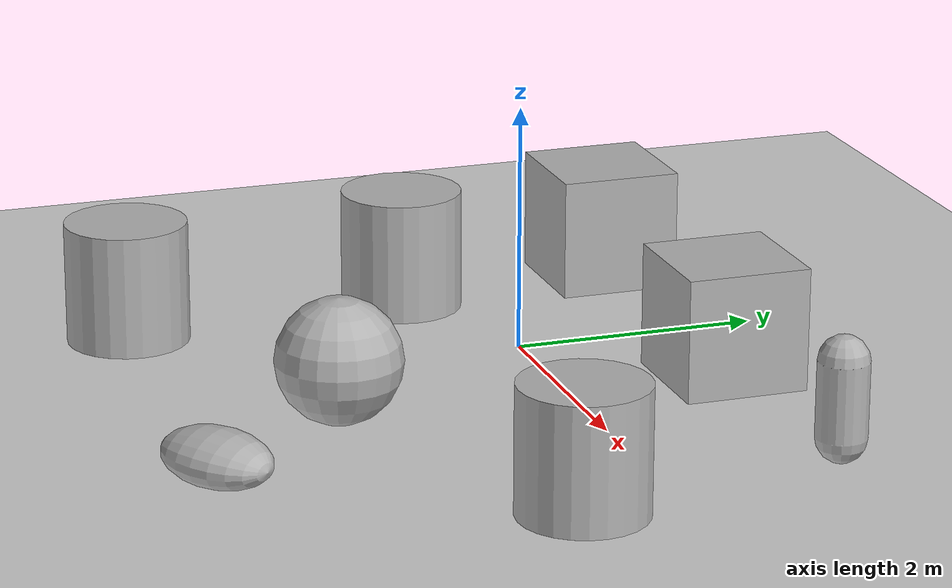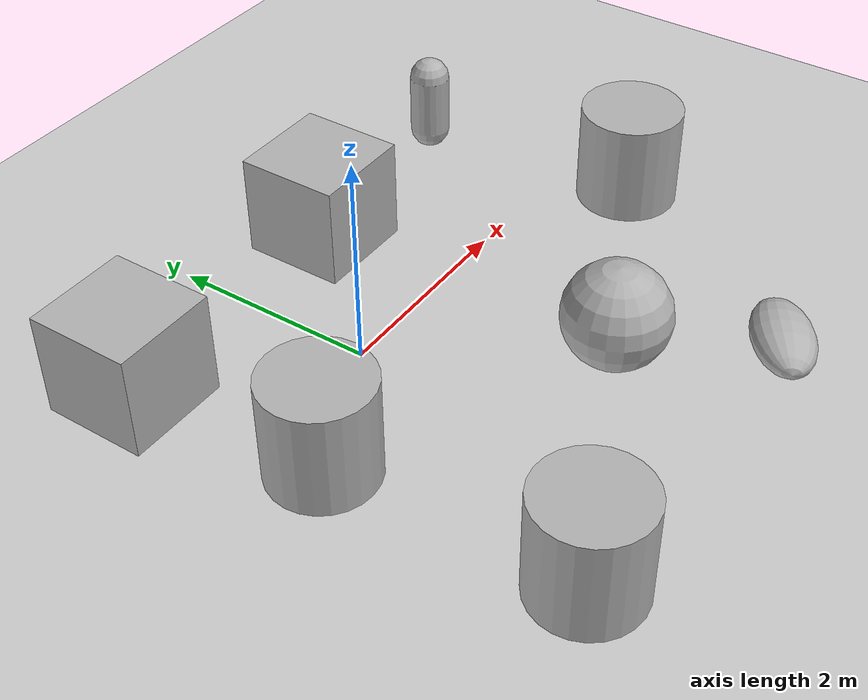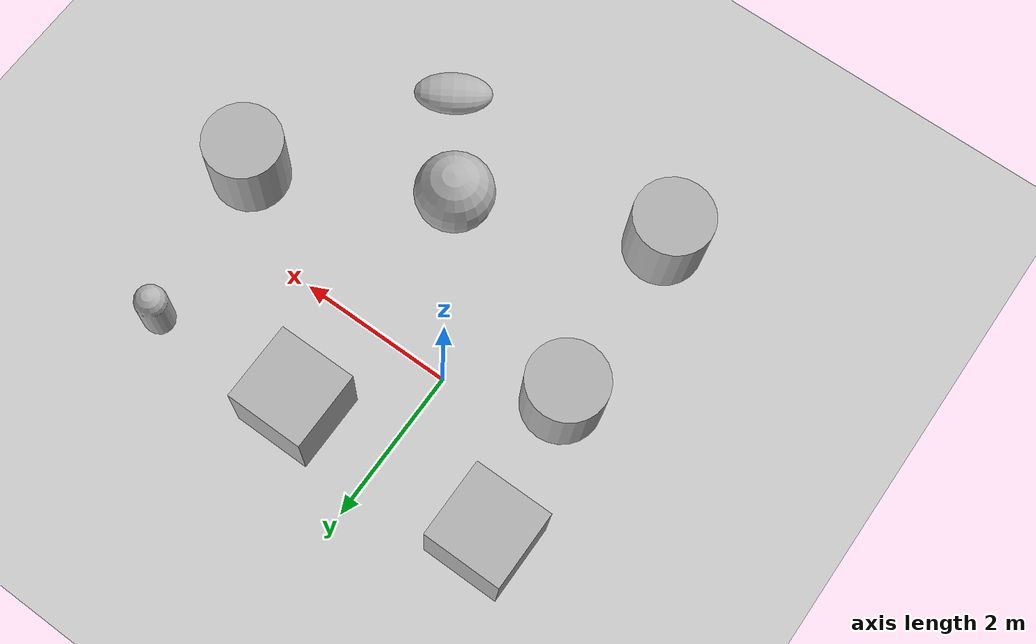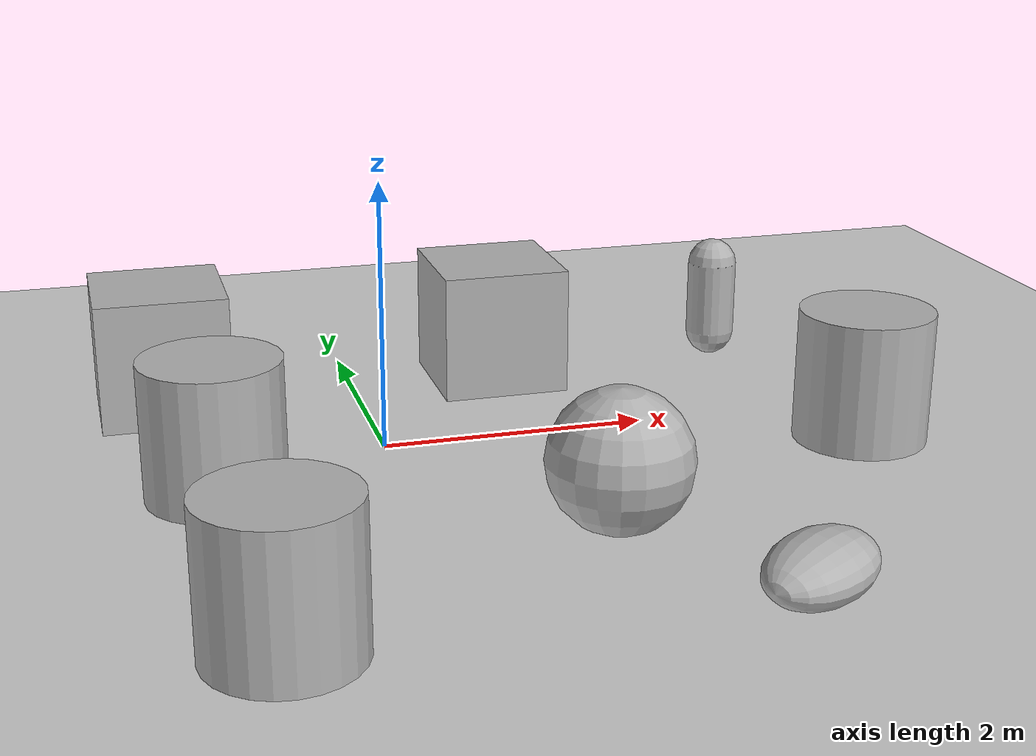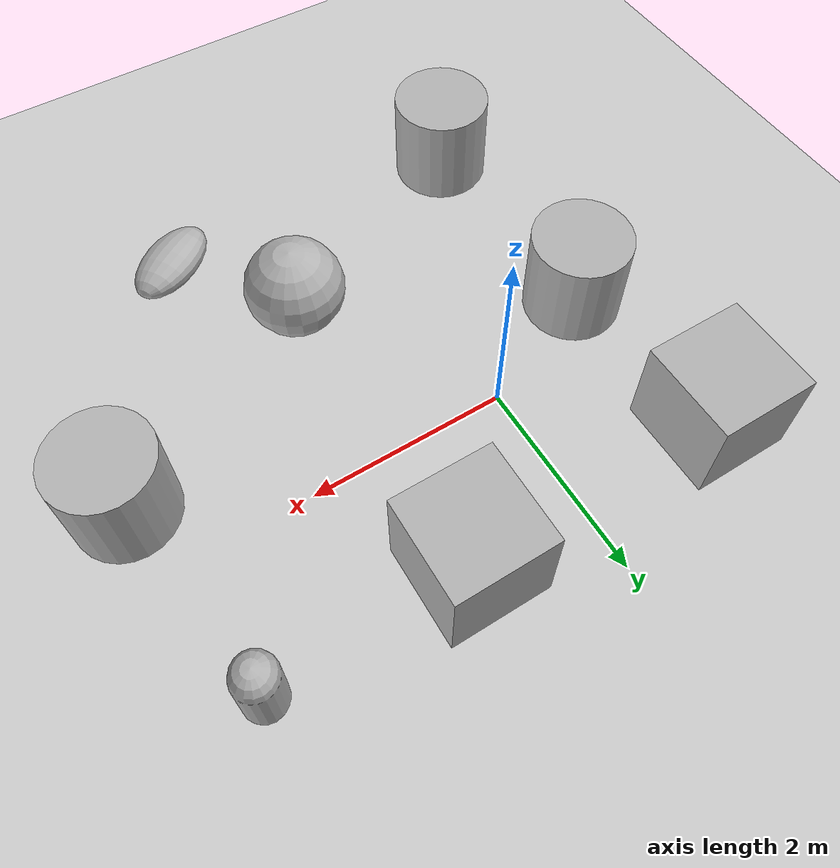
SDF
<sdf version='1.10'>
  <world name='empty'>
    <physics name='1ms' type='ignored'>
      <max_step_size>0.001</max_step_size>
      <real_time_factor>1</real_time_factor>
      <real_time_update_rate>1000</real_time_update_rate>
    </physics>
    <plugin name='gz::sim::systems::Physics' filename='gz-sim-physics-system' />
    <plugin name='gz::sim::systems::UserCommands' filename='gz-sim-user-commands-system' />
    <plugin name='gz::sim::systems::SceneBroadcaster' filename='gz-sim-scene-broadcaster-system' />
    <plugin name='gz::sim::systems::Contact' filename='gz-sim-contact-system' />
    <gravity>0 0 -9.8000000000000007</gravity>
    <magnetic_field>5.5644999999999998e-06 2.2875799999999999e-05 -4.2388400000000002e-05</magnetic_field>
    <atmosphere type='adiabatic' />
    <scene>
      <ambient>0.400000006 0.400000006 0.400000006 1</ambient>
      <background>0.699999988 0.699999988 0.699999988 1</background>
      <shadows>true</shadows>
    </scene>
    <model name='ground_plane'>
      <static>true</static>
      <link name='link'>
        <collision name='collision'>
          <geometry>
            <plane>
              <normal>0 0 1</normal>
              <size>100 100</size>
            </plane>
          </geometry>
          <surface>
            <friction>
              <ode />
            </friction>
            <bounce />
            <contact />
          </surface>
        </collision>
        <visual name='visual'>
          <geometry>
            <plane>
              <normal>0 0 1</normal>
              <size>100 100</size>
            </plane>
          </geometry>
          <material>
            <ambient>0.800000012 0.800000012 0.800000012 1</ambient>
            <diffuse>0.800000012 0.800000012 0.800000012 1</diffuse>
            <specular>0.800000012 0.800000012 0.800000012 1</specular>
          </material>
        </visual>
        <pose>0 0 0 0 0 0</pose>
        <inertial>
          <pose>0 0 0 0 0 0</pose>
          <mass>1</mass>
          <inertia>
            <ixx>1</ixx>
            <ixy>0</ixy>
            <ixz>0</ixz>
            <iyy>1</iyy>
            <iyz>0</iyz>
            <izz>1</izz>
          </inertia>
        </inertial>
        <enable_wind>false</enable_wind>
      </link>
      <pose>0 0 0 0 0 0</pose>
      <self_collide>false</self_collide>
    </model>
    <model name='box'>
      <pose>1.1660916055472477 1.2993458210183038 0.49999999980497606 1.0048033485058014e-21 -2.4640853465547739e-21 -3.9210766489770922e-22</pose>
      <link name='box_link'>
        <inertial>
          <inertia>
            <ixx>0.16666</ixx>
            <ixy>0</ixy>
            <ixz>0</ixz>
            <iyy>0.16666</iyy>
            <iyz>0</iyz>
            <izz>0.16666</izz>
          </inertia>
          <mass>1</mass>
          <pose>0 0 0 0 0 0</pose>
        </inertial>
        <collision name='box_collision'>
          <geometry>
            <box>
              <size>1 1 1</size>
            </box>
          </geometry>
          <surface>
            <friction>
              <ode />
            </friction>
            <bounce />
            <contact />
          </surface>
        </collision>
        <visual name='box_visual'>
          <geometry>
            <box>
              <size>1 1 1</size>
            </box>
          </geometry>
          <material>
            <ambient>0.300000012 0.300000012 0.300000012 1</ambient>
            <diffuse>0.699999988 0.699999988 0.699999988 1</diffuse>
            <specular>1 1 1 1</specular>
          </material>
        </visual>
        <pose>0 0 0 0 0 0</pose>
        <enable_wind>false</enable_wind>
      </link>
      <static>false</static>
      <self_collide>false</self_collide>
    </model>
    <model name='cylinder'>
      <pose>3.4846659461989145 -0.74300504323439609 0.49999943207967634 2.1669526001329398e-19 2.4963226576981788e-20 -1.1756414809361692e-20</pose>
      <link name='cylinder_link'>
        <inertial>
          <inertia>
            <ixx>0.14580000000000001</ixx>
            <ixy>0</ixy>
            <ixz>0</ixz>
            <iyy>0.14580000000000001</iyy>
            <iyz>0</iyz>
            <izz>0.125</izz>
          </inertia>
          <mass>1</mass>
          <pose>0 0 0 0 0 0</pose>
        </inertial>
        <collision name='cylinder_collision'>
          <geometry>
            <cylinder>
              <radius>0.5</radius>
              <length>1</length>
            </cylinder>
          </geometry>
          <surface>
            <friction>
              <ode />
            </friction>
            <bounce />
            <contact />
          </surface>
        </collision>
        <visual name='cylinder_visual'>
          <geometry>
            <cylinder>
              <radius>0.5</radius>
              <length>1</length>
            </cylinder>
          </geometry>
          <material>
            <ambient>0.300000012 0.300000012 0.300000012 1</ambient>
            <diffuse>0.699999988 0.699999988 0.699999988 1</diffuse>
            <specular>1 1 1 1</specular>
          </material>
        </visual>
        <pose>0 0 0 0 0 0</pose>
        <enable_wind>false</enable_wind>
      </link>
      <static>false</static>
      <self_collide>false</self_collide>
    </model>
    <model name='sphere'>
      <pose>1.1850777901563996 -1.8677535488881269 0.49999999980498194 0 0 0</pose>
      <link name='sphere_link'>
        <inertial>
          <inertia>
            <ixx>0.10000000000000001</ixx>
            <ixy>0</ixy>
            <ixz>0</ixz>
            <iyy>0.10000000000000001</iyy>
            <iyz>0</iyz>
            <izz>0.10000000000000001</izz>
          </inertia>
          <mass>1</mass>
          <pose>0 0 0 0 0 0</pose>
        </inertial>
        <collision name='sphere_collision'>
          <geometry>
            <sphere>
              <radius>0.5</radius>
            </sphere>
          </geometry>
          <surface>
            <friction>
              <ode />
            </friction>
            <bounce />
            <contact />
          </surface>
        </collision>
        <visual name='sphere_visual'>
          <geometry>
            <sphere>
              <radius>0.5</radius>
            </sphere>
          </geometry>
          <material>
            <ambient>0.300000012 0.300000012 0.300000012 1</ambient>
            <diffuse>0.699999988 0.699999988 0.699999988 1</diffuse>
            <specular>1 1 1 1</specular>
          </material>
        </visual>
        <pose>0 0 0 0 0 0</pose>
        <enable_wind>false</enable_wind>
      </link>
      <static>false</static>
      <self_collide>false</self_collide>
    </model>
    <model name='box_0'>
      <pose>-1.5123993113797958 1.263689167465879 0.49999999980497606 3.2031303070177259e-21 2.6997416254049152e-21 1.1998235187450823e-23</pose>
      <link name='box_link'>
        <inertial>
          <inertia>
            <ixx>0.16666</ixx>
            <ixy>0</ixy>
            <ixz>0</ixz>
            <iyy>0.16666</iyy>
            <iyz>0</iyz>
            <izz>0.16666</izz>
          </inertia>
          <mass>1</mass>
          <pose>0 0 0 0 0 0</pose>
        </inertial>
        <collision name='box_collision'>
          <geometry>
            <box>
              <size>1 1 1</size>
            </box>
          </geometry>
          <surface>
            <friction>
              <ode />
            </friction>
            <bounce />
            <contact />
          </surface>
        </collision>
        <visual name='box_visual'>
          <geometry>
            <box>
              <size>1 1 1</size>
            </box>
          </geometry>
          <material>
            <ambient>0.300000012 0.300000012 0.300000012 1</ambient>
            <diffuse>0.699999988 0.699999988 0.699999988 1</diffuse>
            <specular>1 1 1 1</specular>
          </material>
        </visual>
        <pose>0 0 0 0 0 0</pose>
        <enable_wind>false</enable_wind>
      </link>
      <static>false</static>
      <self_collide>false</self_collide>
    </model>
    <model name='cylinder_0'>
      <pose>-1.2993815523682415 -0.58479727158858252 0.49999943207967634 1.9148229637455751e-19 4.5585410549193875e-19 1.7387353861095508e-20</pose>
      <link name='cylinder_link'>
        <inertial>
          <inertia>
            <ixx>0.14580000000000001</ixx>
            <ixy>0</ixy>
            <ixz>0</ixz>
            <iyy>0.14580000000000001</iyy>
            <iyz>0</iyz>
            <izz>0.125</izz>
          </inertia>
          <mass>1</mass>
          <pose>0 0 0 0 0 0</pose>
        </inertial>
        <collision name='cylinder_collision'>
          <geometry>
            <cylinder>
              <radius>0.5</radius>
              <length>1</length>
            </cylinder>
          </geometry>
          <surface>
            <friction>
              <ode />
            </friction>
            <bounce />
            <contact />
          </surface>
        </collision>
        <visual name='cylinder_visual'>
          <geometry>
            <cylinder>
              <radius>0.5</radius>
              <length>1</length>
            </cylinder>
          </geometry>
          <material>
            <ambient>0.300000012 0.300000012 0.300000012 1</ambient>
            <diffuse>0.699999988 0.699999988 0.699999988 1</diffuse>
            <specular>1 1 1 1</specular>
          </material>
        </visual>
        <pose>0 0 0 0 0 0</pose>
        <enable_wind>false</enable_wind>
      </link>
      <static>false</static>
      <self_collide>false</self_collide>
    </model>
    <model name='capsule'>
      <pose>3.142121667050394 1.4170953701385194 0.49999999980498194 0 0 0</pose>
      <link name='capsule_link'>
        <inertial>
          <inertia>
            <ixx>0.074153999999999998</ixx>
            <ixy>0</ixy>
            <ixz>0</ixz>
            <iyy>0.074153999999999998</iyy>
            <iyz>0</iyz>
            <izz>0.018769000000000001</izz>
          </inertia>
          <mass>1</mass>
          <pose>0 0 0 0 0 0</pose>
        </inertial>
        <collision name='capsule_collision'>
          <geometry>
            <capsule>
              <radius>0.20000000000000001</radius>
              <length>0.59999999999999998</length>
            </capsule>
          </geometry>
          <surface>
            <friction>
              <ode />
            </friction>
            <bounce />
            <contact />
          </surface>
        </collision>
        <visual name='capsule_visual'>
          <geometry>
            <capsule>
              <radius>0.20000000000000001</radius>
              <length>0.59999999999999998</length>
            </capsule>
          </geometry>
          <material>
            <ambient>0.300000012 0.300000012 0.300000012 1</ambient>
            <diffuse>0.699999988 0.699999988 0.699999988 1</diffuse>
            <specular>1 1 1 1</specular>
          </material>
        </visual>
        <pose>0 0 0 0 0 0</pose>
        <enable_wind>false</enable_wind>
      </link>
      <static>false</static>
      <self_collide>false</self_collide>
    </model>
    <model name='ellipsoid'>
      <pose>2.0592365556934062 -3.0632467809010855 0.18666848403755146 1.5707962936410007 -1.3774883860565608 -0.99836443118692031</pose>
      <link name='ellipsoid_link'>
        <inertial>
          <inertia>
            <ixx>0.068000000000000005</ixx>
            <ixy>0</ixy>
            <ixz>0</ixz>
            <iyy>0.058000000000000003</iyy>
            <iyz>0</iyz>
            <izz>0.025999999999999999</izz>
          </inertia>
          <mass>1</mass>
          <pose>0 0 0 0 0 0</pose>
        </inertial>
        <collision name='ellipsoid_collision'>
          <geometry>
            <ellipsoid>
              <radii>0.20000000000000001 0.29999999999999999 0.5</radii>
            </ellipsoid>
          </geometry>
          <surface>
            <friction>
              <ode />
            </friction>
            <bounce />
            <contact />
          </surface>
        </collision>
        <visual name='ellipsoid_visual'>
          <geometry>
            <ellipsoid>
              <radii>0.20000000000000001 0.29999999999999999 0.5</radii>
            </ellipsoid>
          </geometry>
          <material>
            <ambient>0.300000012 0.300000012 0.300000012 1</ambient>
            <diffuse>0.699999988 0.699999988 0.699999988 1</diffuse>
            <specular>1 1 1 1</specular>
          </material>
        </visual>
        <pose>0 0 0 0 0 0</pose>
        <enable_wind>false</enable_wind>
      </link>
      <static>false</static>
      <self_collide>false</self_collide>
    </model>
    <model name='cylinder_1'>
      <pose>-1.1810352221164693 -2.9499997640592706 0.49999943207967634 3.8183534257226167e-19 -1.2525137552599604e-19 8.805422250798752e-21</pose>
      <link name='cylinder_link'>
        <inertial>
          <inertia>
            <ixx>0.14580000000000001</ixx>
            <ixy>0</ixy>
            <ixz>0</ixz>
            <iyy>0.14580000000000001</iyy>
            <iyz>0</iyz>
            <izz>0.125</izz>
          </inertia>
          <mass>1</mass>
          <pose>0 0 0 0 0 0</pose>
        </inertial>
        <collision name='cylinder_collision'>
          <geometry>
            <cylinder>
              <radius>0.5</radius>
              <length>1</length>
            </cylinder>
          </geometry>
          <surface>
            <friction>
              <ode />
            </friction>
            <bounce />
            <contact />
          </surface>
        </collision>
        <visual name='cylinder_visual'>
          <geometry>
            <cylinder>
              <radius>0.5</radius>
              <length>1</length>
            </cylinder>
          </geometry>
          <material>
            <ambient>0.300000012 0.300000012 0.300000012 1</ambient>
            <diffuse>0.699999988 0.699999988 0.699999988 1</diffuse>
            <specular>1 1 1 1</specular>
          </material>
        </visual>
        <pose>0 0 0 0 0 0</pose>
        <enable_wind>false</enable_wind>
      </link>
      <static>false</static>
      <self_collide>false</self_collide>
    </model>
    <light name='sun' type='directional'>
      <pose>0 0 10 0 0 0</pose>
      <cast_shadows>true</cast_shadows>
      <intensity>1</intensity>
      <direction>-0.5 0.10000000000000001 -0.90000000000000002</direction>
      <diffuse>0.800000012 0.800000012 0.800000012 1</diffuse>
      <specular>0.200000003 0.200000003 0.200000003 1</specular>
      <attenuation>
        <range>1000</range>
        <linear>0.01</linear>
        <constant>0.90000000000000002</constant>
        <quadratic>0.001</quadratic>
      </attenuation>
      <spot>
        <inner_angle>0</inner_angle>
        <outer_angle>0</outer_angle>
        <falloff>0</falloff>
      </spot>
    </light>
  </world>
</sdf>
